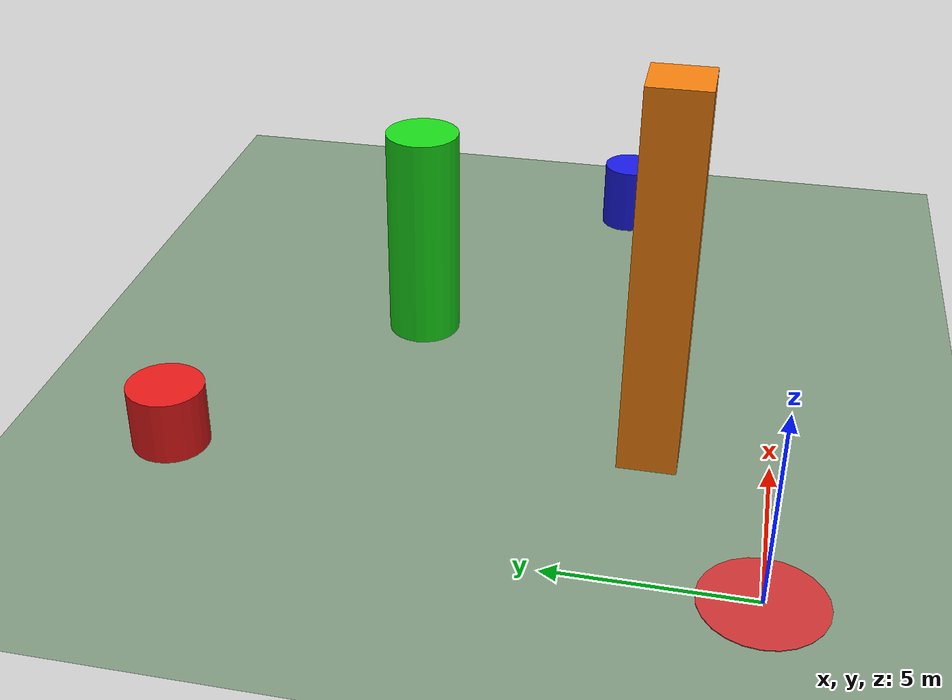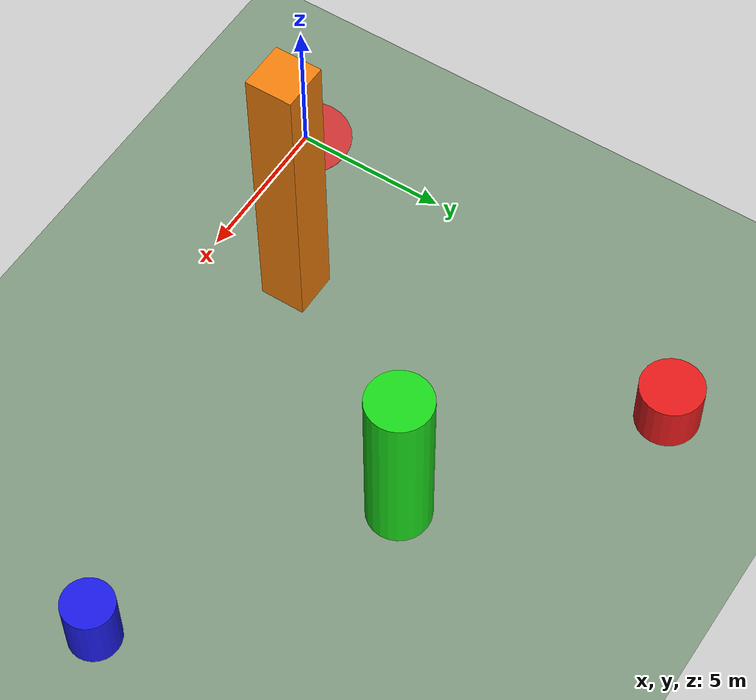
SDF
<?xml version="1.0" encoding="UTF-8"?>
<sdf version="1.9">
  <world name="test_world">

    <!-- ═══ Physics ════════════════════════════════════════════ -->
    <physics type="ode">
      <max_step_size>0.004</max_step_size>
      <real_time_factor>1.0</real_time_factor>
      <real_time_update_rate>250</real_time_update_rate>
    </physics>
    <gravity>0 0 -9.8</gravity>
    <magnetic_field>6e-06 2.3e-05 -4.2e-05</magnetic_field>
    <atmosphere type="adiabatic"/>

    <!-- ═══ Scene ═════════════════════════════════════════════ -->
    <scene>
      <grid>false</grid>
      <ambient>0.4 0.4 0.4 1</ambient>
      <background>0.7 0.8 0.9 1</background>
      <shadows>true</shadows>
    </scene>

    <!-- ═══ GUI — chase-cam behind drone at spawn ═════════════ -->
    <gui fullscreen="0">
      <plugin filename="MinimalScene" name="3D View">
        <gz-gui>
          <title>3D View</title>
          <property type="bool" key="showTitleBar">false</property>
          <property type="string" key="state">docked</property>
        </gz-gui>
        <engine>ogre2</engine>
        <scene>scene</scene>
        <ambient_light>0.4 0.4 0.4</ambient_light>
        <background_color>0.7 0.8 0.9</background_color>
        <!-- Behind and slightly above the drone at origin -->
        <camera_pose>-4 0 2 0 0.25 0</camera_pose>
        <camera_clip>
          <near>0.25</near>
          <far>25000</far>
        </camera_clip>
      </plugin>
      <plugin filename="GzSceneManager" name="Scene Manager">
        <gz-gui>
          <property type="bool" key="showTitleBar">false</property>
          <property type="string" key="state">docked</property>
        </gz-gui>
      </plugin>
      <plugin filename="InteractiveViewControl" name="Interactive view control">
        <gz-gui>
          <property type="bool" key="showTitleBar">false</property>
          <property type="string" key="state">docked</property>
        </gz-gui>
      </plugin>
      <plugin filename="CameraTracking" name="Camera tracking">
        <gz-gui>
          <property type="bool" key="showTitleBar">false</property>
          <property type="string" key="state">docked</property>
        </gz-gui>
      </plugin>
      <plugin filename="EntityTree" name="Entity tree">
        <gz-gui>
          <property type="string" key="state">docked</property>
        </gz-gui>
      </plugin>
    </gui>

    <!-- ═══ Ground Plane ══════════════════════════════════════ -->
    <model name="ground_plane">
      <static>true</static>
      <link name="link">
        <collision name="collision">
          <geometry>
            <plane>
              <normal>0 0 1</normal>
              <size>200 200</size>
            </plane>
          </geometry>
          <surface>
            <friction><ode/></friction>
            <bounce/>
            <contact/>
          </surface>
        </collision>
        <sensor name="contact" type="contact">
          <contact>
            <collision>collision</collision>
            <topic>/world/test_world/contacts</topic>
          </contact>
        </sensor>
        <visual name="visual">
          <geometry>
            <plane>
              <normal>0 0 1</normal>
              <size>200 200</size>
            </plane>
          </geometry>
          <material>
            <ambient>0.5 0.6 0.5 1</ambient>
            <diffuse>0.5 0.6 0.5 1</diffuse>
            <specular>0.3 0.3 0.3 1</specular>
          </material>
        </visual>
        <pose>0 0 0 0 0 0</pose>
        <inertial>
          <mass>1</mass>
          <inertia>
            <ixx>1</ixx><ixy>0</ixy><ixz>0</ixz>
            <iyy>1</iyy><iyz>0</iyz><izz>1</izz>
          </inertia>
        </inertial>
      </link>
      <pose>0 0 0 0 0 0</pose>
    </model>

    <!-- ═══ Landing Pad at Origin ═════════════════════════════ -->
    <model name="landing_pad">
      <static>true</static>
      <pose>0 0 0.01 0 0 0</pose>
      <link name="pad_link">
        <visual name="pad_visual">
          <geometry>
            <cylinder>
              <radius>1.5</radius>
              <length>0.02</length>
            </cylinder>
          </geometry>
          <material>
            <ambient>0.8 0.2 0.2 1</ambient>
            <diffuse>0.8 0.2 0.2 1</diffuse>
            <specular>0.5 0.5 0.5 1</specular>
          </material>
        </visual>
      </link>
    </model>

    <!-- ═══ Obstacles — 4 well-spaced (≥10m apart) with varied heights for Scenario 18/27 ═══ -->

    <!-- Obstacle 1: RED cylinder — PERSON class, 1.7m tall (z=0.85) -->
    <model name="obstacle_red_cylinder">
      <static>true</static>
      <pose>3 15 0.85 0 0 0</pose>
      <link name="link">
        <collision name="collision">
          <geometry><cylinder><radius>1.0</radius><length>1.7</length></cylinder></geometry>
        </collision>
        <!-- Issue #791 — contact sensor: any drone-vs-this-obstacle physical
             contact is published to /world/test_world/contacts and FAILs the
             scenario via the runner's collision gate. -->
        <sensor name="contact" type="contact">
          <contact>
            <collision>collision</collision>
            <topic>/world/test_world/contacts</topic>
          </contact>
        </sensor>
        <visual name="visual">
          <geometry><cylinder><radius>1.0</radius><length>1.7</length></cylinder></geometry>
          <material>
            <ambient>0.9 0.1 0.1 1</ambient>
            <diffuse>0.9 0.1 0.1 1</diffuse>
            <specular>0.4 0.1 0.1 1</specular>
          </material>
        </visual>
      </link>
    </model>

    <!-- Obstacle 2: GREEN cylinder — TREE class, 6.0m tall (z=3.0) -->
    <model name="obstacle_green_cylinder">
      <static>true</static>
      <pose>10 10 3.0 0 0 0</pose>
      <link name="link">
        <collision name="collision">
          <geometry><cylinder><radius>1.0</radius><length>6.0</length></cylinder></geometry>
        </collision>
        <!-- Issue #791 — contact sensor: any drone-vs-this-obstacle physical
             contact is published to /world/test_world/contacts and FAILs the
             scenario via the runner's collision gate. -->
        <sensor name="contact" type="contact">
          <contact>
            <collision>collision</collision>
            <topic>/world/test_world/contacts</topic>
          </contact>
        </sensor>
        <visual name="visual">
          <geometry><cylinder><radius>1.0</radius><length>6.0</length></cylinder></geometry>
          <material>
            <ambient>0.1 0.85 0.1 1</ambient>
            <diffuse>0.1 0.85 0.1 1</diffuse>
            <specular>0.1 0.4 0.1 1</specular>
          </material>
        </visual>
      </link>
    </model>

    <!-- Obstacle 3: BLUE cylinder — VEHICLE_CAR class, 2.0m tall (z=1.0) -->
    <model name="obstacle_blue_cylinder">
      <static>true</static>
      <pose>18 5 1.0 0 0 0</pose>
      <link name="link">
        <collision name="collision">
          <geometry><cylinder><radius>0.8</radius><length>2.0</length></cylinder></geometry>
        </collision>
        <!-- Issue #791 — contact sensor: any drone-vs-this-obstacle physical
             contact is published to /world/test_world/contacts and FAILs the
             scenario via the runner's collision gate. -->
        <sensor name="contact" type="contact">
          <contact>
            <collision>collision</collision>
            <topic>/world/test_world/contacts</topic>
          </contact>
        </sensor>
        <visual name="visual">
          <geometry><cylinder><radius>0.8</radius><length>2.0</length></cylinder></geometry>
          <material>
            <ambient>0.1 0.1 0.9 1</ambient>
            <diffuse>0.1 0.1 0.9 1</diffuse>
            <specular>0.1 0.1 0.4 1</specular>
          </material>
        </visual>
      </link>
    </model>

    <!-- Obstacle 4: ORANGE box — BUILDING class, 10.0m tall (z=5.0) -->
    <model name="obstacle_orange_box">
      <static>true</static>
      <pose>5 3 5.0 0 0 0</pose>
      <link name="link">
        <collision name="collision">
          <geometry><box><size>1.5 1.5 10</size></box></geometry>
        </collision>
        <!-- Issue #791 — contact sensor: any drone-vs-this-obstacle physical
             contact is published to /world/test_world/contacts and FAILs the
             scenario via the runner's collision gate. -->
        <sensor name="contact" type="contact">
          <contact>
            <collision>collision</collision>
            <topic>/world/test_world/contacts</topic>
          </contact>
        </sensor>
        <visual name="visual">
          <geometry><box><size>1.5 1.5 10</size></box></geometry>
          <material>
            <ambient>0.95 0.5 0.05 1</ambient>
            <diffuse>0.95 0.5 0.05 1</diffuse>
            <specular>0.4 0.2 0.05 1</specular>
          </material>
        </visual>
      </link>
    </model>

    <!-- ═══ Sun ═══════════════════════════════════════════════ -->
    <light name="sun" type="directional">
      <pose>0 0 500 0 0 0</pose>
      <cast_shadows>true</cast_shadows>
      <intensity>1</intensity>
      <direction>0.001 0.625 -0.78</direction>
      <diffuse>0.904 0.904 0.904 1</diffuse>
      <specular>0.271 0.271 0.271 1</specular>
      <attenuation>
        <range>2000</range>
        <linear>0</linear>
        <constant>1</constant>
        <quadratic>0</quadratic>
      </attenuation>
    </light>

    <!-- ═══ Geo-Reference (Zurich, same as PX4 default) ══════ -->
    <spherical_coordinates>
      <surface_model>EARTH_WGS84</surface_model>
      <world_frame_orientation>ENU</world_frame_orientation>
      <latitude_deg>47.397971057728974</latitude_deg>
      <longitude_deg>8.546163739800146</longitude_deg>
      <elevation>0</elevation>
    </spherical_coordinates>

  </world>
</sdf>
